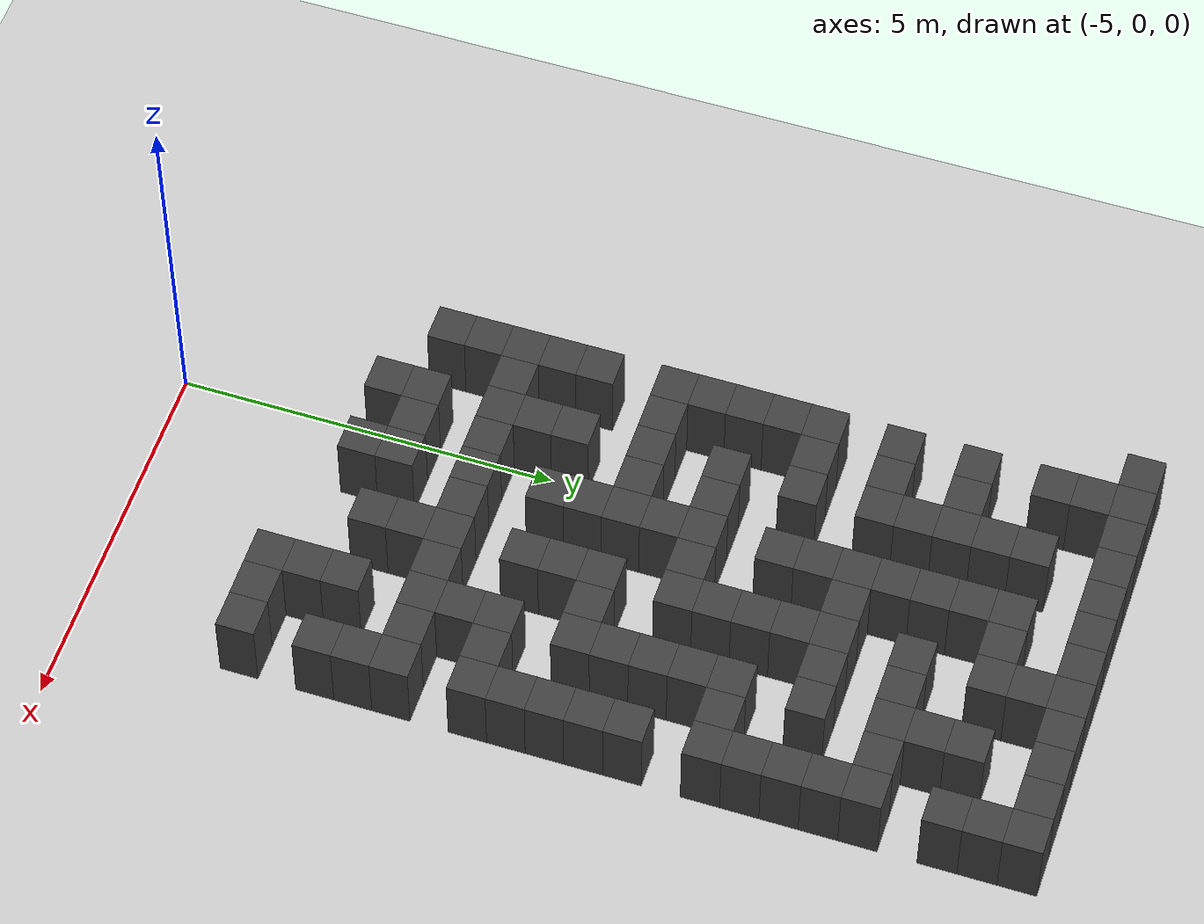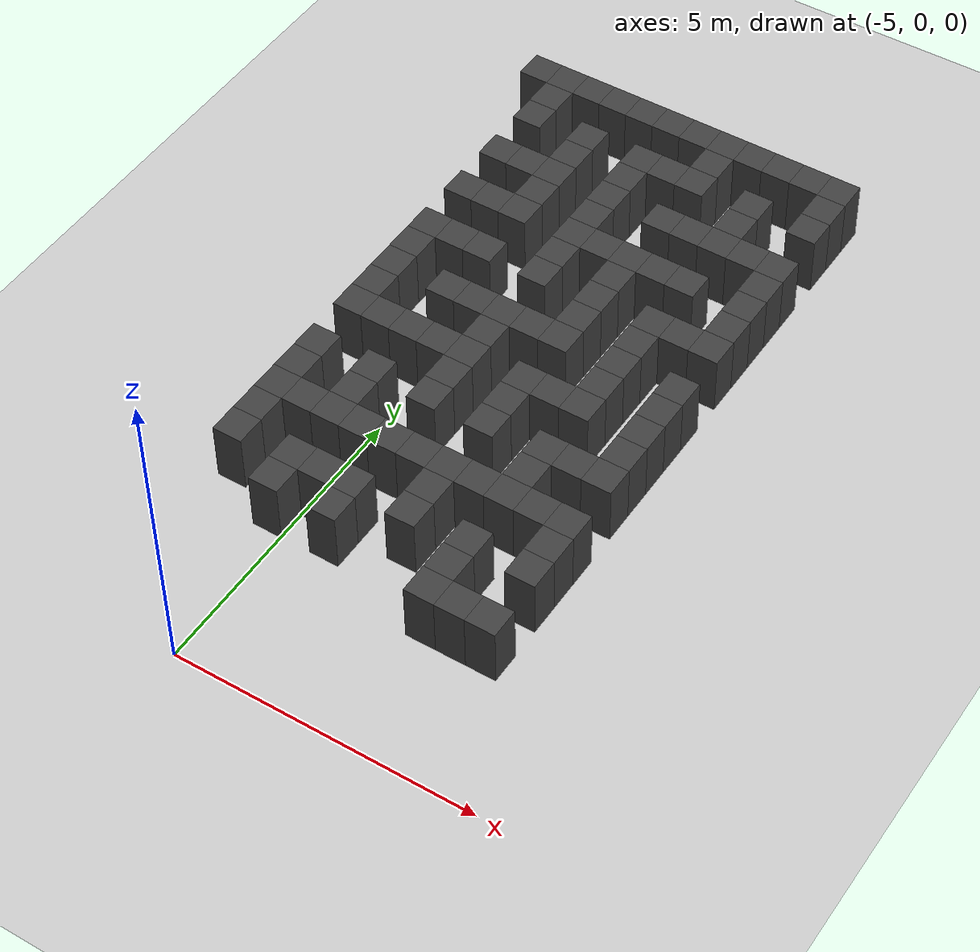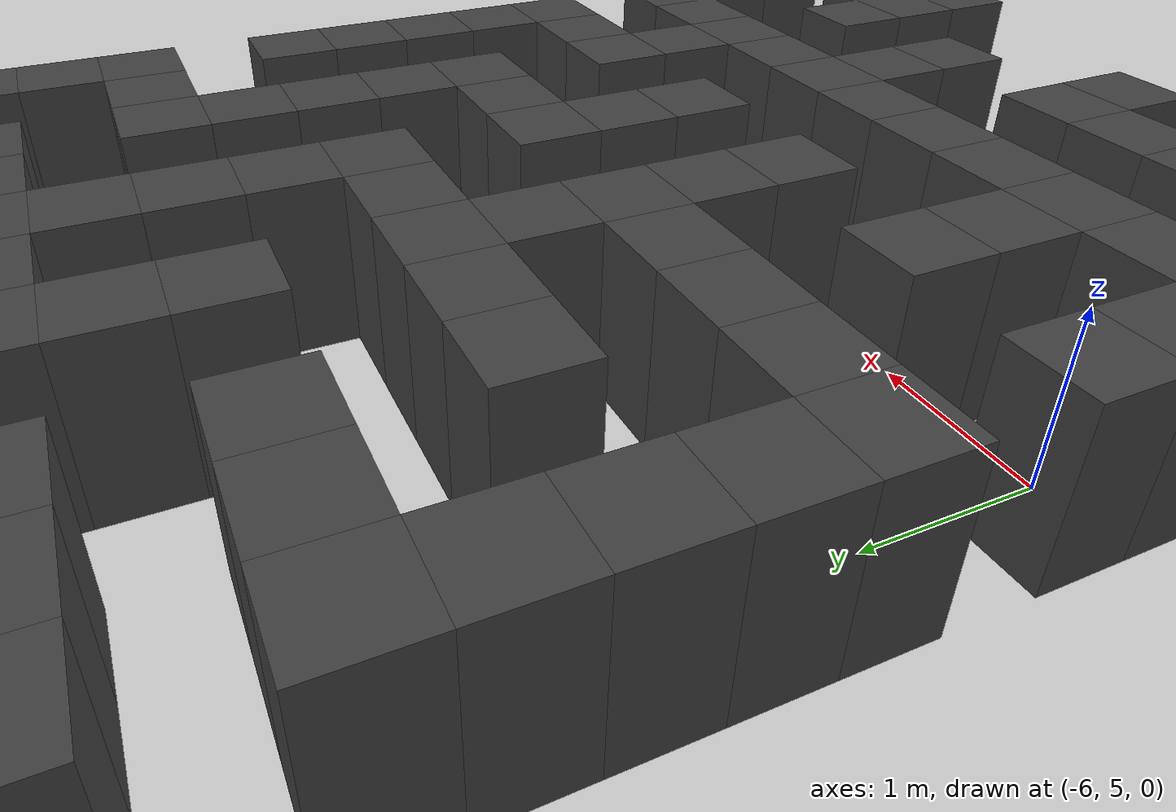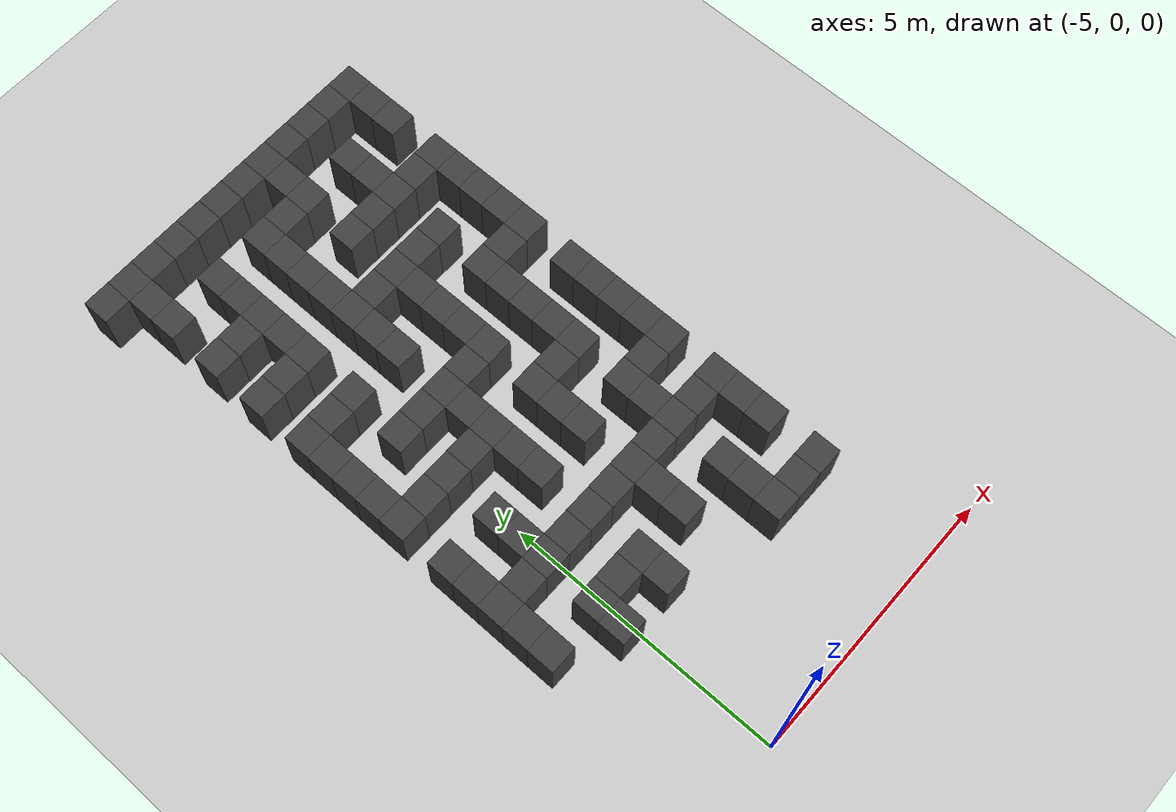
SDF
<sdf version="1.7">
 <world name="map_19815">
  <model name="ground_plane">
   <static>true</static>
   <link name="link">
    <collision name="collision">
     <geometry><plane><normal>0 0 1</normal><size>200 200</size></plane></geometry>
    </collision>
    <visual name="visual">
     <geometry><plane><normal>0 0 1</normal><size>200 200</size></plane></geometry>
     <material><ambient>0.8 0.8 0.8 1</ambient><diffuse>0.8 0.8 0.8 1</diffuse></material>
    </visual>
   </link>
  </model>
  <model name="maze_environment">
   <static>true</static>
   <link name="wall_11">
    <pose>-6.750 12.250 0.500 0 0 0</pose>
    <collision name="col"><geometry><box><size>0.5 0.5 1.0</size></box></geometry></collision>
    <visual name="vis">
     <geometry><box><size>0.5 0.5 1.0</size></box></geometry>
     <material><ambient>0.15 0.15 0.15 1</ambient><diffuse>0.25 0.25 0.25 1</diffuse></material>
    </visual>
   </link>
   <link name="wall_12">
    <pose>-6.250 12.250 0.500 0 0 0</pose>
    <collision name="col"><geometry><box><size>0.5 0.5 1.0</size></box></geometry></collision>
    <visual name="vis">
     <geometry><box><size>0.5 0.5 1.0</size></box></geometry>
     <material><ambient>0.15 0.15 0.15 1</ambient><diffuse>0.25 0.25 0.25 1</diffuse></material>
    </visual>
   </link>
   <link name="wall_13">
    <pose>-5.750 12.250 0.500 0 0 0</pose>
    <collision name="col"><geometry><box><size>0.5 0.5 1.0</size></box></geometry></collision>
    <visual name="vis">
     <geometry><box><size>0.5 0.5 1.0</size></box></geometry>
     <material><ambient>0.15 0.15 0.15 1</ambient><diffuse>0.25 0.25 0.25 1</diffuse></material>
    </visual>
   </link>
   <link name="wall_14">
    <pose>-5.250 12.250 0.500 0 0 0</pose>
    <collision name="col"><geometry><box><size>0.5 0.5 1.0</size></box></geometry></collision>
    <visual name="vis">
     <geometry><box><size>0.5 0.5 1.0</size></box></geometry>
     <material><ambient>0.15 0.15 0.15 1</ambient><diffuse>0.25 0.25 0.25 1</diffuse></material>
    </visual>
   </link>
   <link name="wall_15">
    <pose>-4.750 12.250 0.500 0 0 0</pose>
    <collision name="col"><geometry><box><size>0.5 0.5 1.0</size></box></geometry></collision>
    <visual name="vis">
     <geometry><box><size>0.5 0.5 1.0</size></box></geometry>
     <material><ambient>0.15 0.15 0.15 1</ambient><diffuse>0.25 0.25 0.25 1</diffuse></material>
    </visual>
   </link>
   <link name="wall_16">
    <pose>-4.250 12.250 0.500 0 0 0</pose>
    <collision name="col"><geometry><box><size>0.5 0.5 1.0</size></box></geometry></collision>
    <visual name="vis">
     <geometry><box><size>0.5 0.5 1.0</size></box></geometry>
     <material><ambient>0.15 0.15 0.15 1</ambient><diffuse>0.25 0.25 0.25 1</diffuse></material>
    </visual>
   </link>
   <link name="wall_17">
    <pose>-3.750 12.250 0.500 0 0 0</pose>
    <collision name="col"><geometry><box><size>0.5 0.5 1.0</size></box></geometry></collision>
    <visual name="vis">
     <geometry><box><size>0.5 0.5 1.0</size></box></geometry>
     <material><ambient>0.15 0.15 0.15 1</ambient><diffuse>0.25 0.25 0.25 1</diffuse></material>
    </visual>
   </link>
   <link name="wall_18">
    <pose>-3.250 12.250 0.500 0 0 0</pose>
    <collision name="col"><geometry><box><size>0.5 0.5 1.0</size></box></geometry></collision>
    <visual name="vis">
     <geometry><box><size>0.5 0.5 1.0</size></box></geometry>
     <material><ambient>0.15 0.15 0.15 1</ambient><diffuse>0.25 0.25 0.25 1</diffuse></material>
    </visual>
   </link>
   <link name="wall_19">
    <pose>-2.750 12.250 0.500 0 0 0</pose>
    <collision name="col"><geometry><box><size>0.5 0.5 1.0</size></box></geometry></collision>
    <visual name="vis">
     <geometry><box><size>0.5 0.5 1.0</size></box></geometry>
     <material><ambient>0.15 0.15 0.15 1</ambient><diffuse>0.25 0.25 0.25 1</diffuse></material>
    </visual>
   </link>
   <link name="wall_20">
    <pose>-2.250 12.250 0.500 0 0 0</pose>
    <collision name="col"><geometry><box><size>0.5 0.5 1.0</size></box></geometry></collision>
    <visual name="vis">
     <geometry><box><size>0.5 0.5 1.0</size></box></geometry>
     <material><ambient>0.15 0.15 0.15 1</ambient><diffuse>0.25 0.25 0.25 1</diffuse></material>
    </visual>
   </link>
   <link name="wall_21">
    <pose>-1.750 12.250 0.500 0 0 0</pose>
    <collision name="col"><geometry><box><size>0.5 0.5 1.0</size></box></geometry></collision>
    <visual name="vis">
     <geometry><box><size>0.5 0.5 1.0</size></box></geometry>
     <material><ambient>0.15 0.15 0.15 1</ambient><diffuse>0.25 0.25 0.25 1</diffuse></material>
    </visual>
   </link>
   <link name="wall_22">
    <pose>-1.250 12.250 0.500 0 0 0</pose>
    <collision name="col"><geometry><box><size>0.5 0.5 1.0</size></box></geometry></collision>
    <visual name="vis">
     <geometry><box><size>0.5 0.5 1.0</size></box></geometry>
     <material><ambient>0.15 0.15 0.15 1</ambient><diffuse>0.25 0.25 0.25 1</diffuse></material>
    </visual>
   </link>
   <link name="wall_53">
    <pose>-6.250 11.750 0.500 0 0 0</pose>
    <collision name="col"><geometry><box><size>0.5 0.5 1.0</size></box></geometry></collision>
    <visual name="vis">
     <geometry><box><size>0.5 0.5 1.0</size></box></geometry>
     <material><ambient>0.15 0.15 0.15 1</ambient><diffuse>0.25 0.25 0.25 1</diffuse></material>
    </visual>
   </link>
   <link name="wall_54">
    <pose>-3.250 11.750 0.500 0 0 0</pose>
    <collision name="col"><geometry><box><size>0.5 0.5 1.0</size></box></geometry></collision>
    <visual name="vis">
     <geometry><box><size>0.5 0.5 1.0</size></box></geometry>
     <material><ambient>0.15 0.15 0.15 1</ambient><diffuse>0.25 0.25 0.25 1</diffuse></material>
    </visual>
   </link>
   <link name="wall_55">
    <pose>-1.250 11.750 0.500 0 0 0</pose>
    <collision name="col"><geometry><box><size>0.5 0.5 1.0</size></box></geometry></collision>
    <visual name="vis">
     <geometry><box><size>0.5 0.5 1.0</size></box></geometry>
     <material><ambient>0.15 0.15 0.15 1</ambient><diffuse>0.25 0.25 0.25 1</diffuse></material>
    </visual>
   </link>
   <link name="wall_67">
    <pose>-6.250 11.250 0.500 0 0 0</pose>
    <collision name="col"><geometry><box><size>0.5 0.5 1.0</size></box></geometry></collision>
    <visual name="vis">
     <geometry><box><size>0.5 0.5 1.0</size></box></geometry>
     <material><ambient>0.15 0.15 0.15 1</ambient><diffuse>0.25 0.25 0.25 1</diffuse></material>
    </visual>
   </link>
   <link name="wall_68">
    <pose>-5.250 11.250 0.500 0 0 0</pose>
    <collision name="col"><geometry><box><size>0.5 0.5 1.0</size></box></geometry></collision>
    <visual name="vis">
     <geometry><box><size>0.5 0.5 1.0</size></box></geometry>
     <material><ambient>0.15 0.15 0.15 1</ambient><diffuse>0.25 0.25 0.25 1</diffuse></material>
    </visual>
   </link>
   <link name="wall_69">
    <pose>-4.250 11.250 0.500 0 0 0</pose>
    <collision name="col"><geometry><box><size>0.5 0.5 1.0</size></box></geometry></collision>
    <visual name="vis">
     <geometry><box><size>0.5 0.5 1.0</size></box></geometry>
     <material><ambient>0.15 0.15 0.15 1</ambient><diffuse>0.25 0.25 0.25 1</diffuse></material>
    </visual>
   </link>
   <link name="wall_70">
    <pose>-3.750 11.250 0.500 0 0 0</pose>
    <collision name="col"><geometry><box><size>0.5 0.5 1.0</size></box></geometry></collision>
    <visual name="vis">
     <geometry><box><size>0.5 0.5 1.0</size></box></geometry>
     <material><ambient>0.15 0.15 0.15 1</ambient><diffuse>0.25 0.25 0.25 1</diffuse></material>
    </visual>
   </link>
   <link name="wall_71">
    <pose>-3.250 11.250 0.500 0 0 0</pose>
    <collision name="col"><geometry><box><size>0.5 0.5 1.0</size></box></geometry></collision>
    <visual name="vis">
     <geometry><box><size>0.5 0.5 1.0</size></box></geometry>
     <material><ambient>0.15 0.15 0.15 1</ambient><diffuse>0.25 0.25 0.25 1</diffuse></material>
    </visual>
   </link>
   <link name="wall_72">
    <pose>-2.250 11.250 0.500 0 0 0</pose>
    <collision name="col"><geometry><box><size>0.5 0.5 1.0</size></box></geometry></collision>
    <visual name="vis">
     <geometry><box><size>0.5 0.5 1.0</size></box></geometry>
     <material><ambient>0.15 0.15 0.15 1</ambient><diffuse>0.25 0.25 0.25 1</diffuse></material>
    </visual>
   </link>
   <link name="wall_73">
    <pose>-1.250 11.250 0.500 0 0 0</pose>
    <collision name="col"><geometry><box><size>0.5 0.5 1.0</size></box></geometry></collision>
    <visual name="vis">
     <geometry><box><size>0.5 0.5 1.0</size></box></geometry>
     <material><ambient>0.15 0.15 0.15 1</ambient><diffuse>0.25 0.25 0.25 1</diffuse></material>
    </visual>
   </link>
   <link name="wall_99">
    <pose>-5.250 10.750 0.500 0 0 0</pose>
    <collision name="col"><geometry><box><size>0.5 0.5 1.0</size></box></geometry></collision>
    <visual name="vis">
     <geometry><box><size>0.5 0.5 1.0</size></box></geometry>
     <material><ambient>0.15 0.15 0.15 1</ambient><diffuse>0.25 0.25 0.25 1</diffuse></material>
    </visual>
   </link>
   <link name="wall_100">
    <pose>-4.250 10.750 0.500 0 0 0</pose>
    <collision name="col"><geometry><box><size>0.5 0.5 1.0</size></box></geometry></collision>
    <visual name="vis">
     <geometry><box><size>0.5 0.5 1.0</size></box></geometry>
     <material><ambient>0.15 0.15 0.15 1</ambient><diffuse>0.25 0.25 0.25 1</diffuse></material>
    </visual>
   </link>
   <link name="wall_101">
    <pose>-2.250 10.750 0.500 0 0 0</pose>
    <collision name="col"><geometry><box><size>0.5 0.5 1.0</size></box></geometry></collision>
    <visual name="vis">
     <geometry><box><size>0.5 0.5 1.0</size></box></geometry>
     <material><ambient>0.15 0.15 0.15 1</ambient><diffuse>0.25 0.25 0.25 1</diffuse></material>
    </visual>
   </link>
   <link name="wall_117">
    <pose>-6.250 10.250 0.500 0 0 0</pose>
    <collision name="col"><geometry><box><size>0.5 0.5 1.0</size></box></geometry></collision>
    <visual name="vis">
     <geometry><box><size>0.5 0.5 1.0</size></box></geometry>
     <material><ambient>0.15 0.15 0.15 1</ambient><diffuse>0.25 0.25 0.25 1</diffuse></material>
    </visual>
   </link>
   <link name="wall_118">
    <pose>-5.750 10.250 0.500 0 0 0</pose>
    <collision name="col"><geometry><box><size>0.5 0.5 1.0</size></box></geometry></collision>
    <visual name="vis">
     <geometry><box><size>0.5 0.5 1.0</size></box></geometry>
     <material><ambient>0.15 0.15 0.15 1</ambient><diffuse>0.25 0.25 0.25 1</diffuse></material>
    </visual>
   </link>
   <link name="wall_119">
    <pose>-5.250 10.250 0.500 0 0 0</pose>
    <collision name="col"><geometry><box><size>0.5 0.5 1.0</size></box></geometry></collision>
    <visual name="vis">
     <geometry><box><size>0.5 0.5 1.0</size></box></geometry>
     <material><ambient>0.15 0.15 0.15 1</ambient><diffuse>0.25 0.25 0.25 1</diffuse></material>
    </visual>
   </link>
   <link name="wall_120">
    <pose>-4.250 10.250 0.500 0 0 0</pose>
    <collision name="col"><geometry><box><size>0.5 0.5 1.0</size></box></geometry></collision>
    <visual name="vis">
     <geometry><box><size>0.5 0.5 1.0</size></box></geometry>
     <material><ambient>0.15 0.15 0.15 1</ambient><diffuse>0.25 0.25 0.25 1</diffuse></material>
    </visual>
   </link>
   <link name="wall_121">
    <pose>-3.250 10.250 0.500 0 0 0</pose>
    <collision name="col"><geometry><box><size>0.5 0.5 1.0</size></box></geometry></collision>
    <visual name="vis">
     <geometry><box><size>0.5 0.5 1.0</size></box></geometry>
     <material><ambient>0.15 0.15 0.15 1</ambient><diffuse>0.25 0.25 0.25 1</diffuse></material>
    </visual>
   </link>
   <link name="wall_122">
    <pose>-2.750 10.250 0.500 0 0 0</pose>
    <collision name="col"><geometry><box><size>0.5 0.5 1.0</size></box></geometry></collision>
    <visual name="vis">
     <geometry><box><size>0.5 0.5 1.0</size></box></geometry>
     <material><ambient>0.15 0.15 0.15 1</ambient><diffuse>0.25 0.25 0.25 1</diffuse></material>
    </visual>
   </link>
   <link name="wall_123">
    <pose>-2.250 10.250 0.500 0 0 0</pose>
    <collision name="col"><geometry><box><size>0.5 0.5 1.0</size></box></geometry></collision>
    <visual name="vis">
     <geometry><box><size>0.5 0.5 1.0</size></box></geometry>
     <material><ambient>0.15 0.15 0.15 1</ambient><diffuse>0.25 0.25 0.25 1</diffuse></material>
    </visual>
   </link>
   <link name="wall_124">
    <pose>-1.750 10.250 0.500 0 0 0</pose>
    <collision name="col"><geometry><box><size>0.5 0.5 1.0</size></box></geometry></collision>
    <visual name="vis">
     <geometry><box><size>0.5 0.5 1.0</size></box></geometry>
     <material><ambient>0.15 0.15 0.15 1</ambient><diffuse>0.25 0.25 0.25 1</diffuse></material>
    </visual>
   </link>
   <link name="wall_125">
    <pose>-1.250 10.250 0.500 0 0 0</pose>
    <collision name="col"><geometry><box><size>0.5 0.5 1.0</size></box></geometry></collision>
    <visual name="vis">
     <geometry><box><size>0.5 0.5 1.0</size></box></geometry>
     <material><ambient>0.15 0.15 0.15 1</ambient><diffuse>0.25 0.25 0.25 1</diffuse></material>
    </visual>
   </link>
   <link name="wall_150">
    <pose>-5.250 9.750 0.500 0 0 0</pose>
    <collision name="col"><geometry><box><size>0.5 0.5 1.0</size></box></geometry></collision>
    <visual name="vis">
     <geometry><box><size>0.5 0.5 1.0</size></box></geometry>
     <material><ambient>0.15 0.15 0.15 1</ambient><diffuse>0.25 0.25 0.25 1</diffuse></material>
    </visual>
   </link>
   <link name="wall_151">
    <pose>-4.250 9.750 0.500 0 0 0</pose>
    <collision name="col"><geometry><box><size>0.5 0.5 1.0</size></box></geometry></collision>
    <visual name="vis">
     <geometry><box><size>0.5 0.5 1.0</size></box></geometry>
     <material><ambient>0.15 0.15 0.15 1</ambient><diffuse>0.25 0.25 0.25 1</diffuse></material>
    </visual>
   </link>
   <link name="wall_152">
    <pose>-1.250 9.750 0.500 0 0 0</pose>
    <collision name="col"><geometry><box><size>0.5 0.5 1.0</size></box></geometry></collision>
    <visual name="vis">
     <geometry><box><size>0.5 0.5 1.0</size></box></geometry>
     <material><ambient>0.15 0.15 0.15 1</ambient><diffuse>0.25 0.25 0.25 1</diffuse></material>
    </visual>
   </link>
   <link name="wall_171">
    <pose>-6.250 9.250 0.500 0 0 0</pose>
    <collision name="col"><geometry><box><size>0.5 0.5 1.0</size></box></geometry></collision>
    <visual name="vis">
     <geometry><box><size>0.5 0.5 1.0</size></box></geometry>
     <material><ambient>0.15 0.15 0.15 1</ambient><diffuse>0.25 0.25 0.25 1</diffuse></material>
    </visual>
   </link>
   <link name="wall_172">
    <pose>-5.750 9.250 0.500 0 0 0</pose>
    <collision name="col"><geometry><box><size>0.5 0.5 1.0</size></box></geometry></collision>
    <visual name="vis">
     <geometry><box><size>0.5 0.5 1.0</size></box></geometry>
     <material><ambient>0.15 0.15 0.15 1</ambient><diffuse>0.25 0.25 0.25 1</diffuse></material>
    </visual>
   </link>
   <link name="wall_173">
    <pose>-5.250 9.250 0.500 0 0 0</pose>
    <collision name="col"><geometry><box><size>0.5 0.5 1.0</size></box></geometry></collision>
    <visual name="vis">
     <geometry><box><size>0.5 0.5 1.0</size></box></geometry>
     <material><ambient>0.15 0.15 0.15 1</ambient><diffuse>0.25 0.25 0.25 1</diffuse></material>
    </visual>
   </link>
   <link name="wall_174">
    <pose>-4.250 9.250 0.500 0 0 0</pose>
    <collision name="col"><geometry><box><size>0.5 0.5 1.0</size></box></geometry></collision>
    <visual name="vis">
     <geometry><box><size>0.5 0.5 1.0</size></box></geometry>
     <material><ambient>0.15 0.15 0.15 1</ambient><diffuse>0.25 0.25 0.25 1</diffuse></material>
    </visual>
   </link>
   <link name="wall_175">
    <pose>-3.750 9.250 0.500 0 0 0</pose>
    <collision name="col"><geometry><box><size>0.5 0.5 1.0</size></box></geometry></collision>
    <visual name="vis">
     <geometry><box><size>0.5 0.5 1.0</size></box></geometry>
     <material><ambient>0.15 0.15 0.15 1</ambient><diffuse>0.25 0.25 0.25 1</diffuse></material>
    </visual>
   </link>
   <link name="wall_176">
    <pose>-3.250 9.250 0.500 0 0 0</pose>
    <collision name="col"><geometry><box><size>0.5 0.5 1.0</size></box></geometry></collision>
    <visual name="vis">
     <geometry><box><size>0.5 0.5 1.0</size></box></geometry>
     <material><ambient>0.15 0.15 0.15 1</ambient><diffuse>0.25 0.25 0.25 1</diffuse></material>
    </visual>
   </link>
   <link name="wall_177">
    <pose>-2.750 9.250 0.500 0 0 0</pose>
    <collision name="col"><geometry><box><size>0.5 0.5 1.0</size></box></geometry></collision>
    <visual name="vis">
     <geometry><box><size>0.5 0.5 1.0</size></box></geometry>
     <material><ambient>0.15 0.15 0.15 1</ambient><diffuse>0.25 0.25 0.25 1</diffuse></material>
    </visual>
   </link>
   <link name="wall_178">
    <pose>-2.250 9.250 0.500 0 0 0</pose>
    <collision name="col"><geometry><box><size>0.5 0.5 1.0</size></box></geometry></collision>
    <visual name="vis">
     <geometry><box><size>0.5 0.5 1.0</size></box></geometry>
     <material><ambient>0.15 0.15 0.15 1</ambient><diffuse>0.25 0.25 0.25 1</diffuse></material>
    </visual>
   </link>
   <link name="wall_179">
    <pose>-1.250 9.250 0.500 0 0 0</pose>
    <collision name="col"><geometry><box><size>0.5 0.5 1.0</size></box></geometry></collision>
    <visual name="vis">
     <geometry><box><size>0.5 0.5 1.0</size></box></geometry>
     <material><ambient>0.15 0.15 0.15 1</ambient><diffuse>0.25 0.25 0.25 1</diffuse></material>
    </visual>
   </link>
   <link name="wall_204">
    <pose>-4.250 8.750 0.500 0 0 0</pose>
    <collision name="col"><geometry><box><size>0.5 0.5 1.0</size></box></geometry></collision>
    <visual name="vis">
     <geometry><box><size>0.5 0.5 1.0</size></box></geometry>
     <material><ambient>0.15 0.15 0.15 1</ambient><diffuse>0.25 0.25 0.25 1</diffuse></material>
    </visual>
   </link>
   <link name="wall_205">
    <pose>-3.250 8.750 0.500 0 0 0</pose>
    <collision name="col"><geometry><box><size>0.5 0.5 1.0</size></box></geometry></collision>
    <visual name="vis">
     <geometry><box><size>0.5 0.5 1.0</size></box></geometry>
     <material><ambient>0.15 0.15 0.15 1</ambient><diffuse>0.25 0.25 0.25 1</diffuse></material>
    </visual>
   </link>
   <link name="wall_206">
    <pose>-1.250 8.750 0.500 0 0 0</pose>
    <collision name="col"><geometry><box><size>0.5 0.5 1.0</size></box></geometry></collision>
    <visual name="vis">
     <geometry><box><size>0.5 0.5 1.0</size></box></geometry>
     <material><ambient>0.15 0.15 0.15 1</ambient><diffuse>0.25 0.25 0.25 1</diffuse></material>
    </visual>
   </link>
   <link name="wall_225">
    <pose>-6.250 8.250 0.500 0 0 0</pose>
    <collision name="col"><geometry><box><size>0.5 0.5 1.0</size></box></geometry></collision>
    <visual name="vis">
     <geometry><box><size>0.5 0.5 1.0</size></box></geometry>
     <material><ambient>0.15 0.15 0.15 1</ambient><diffuse>0.25 0.25 0.25 1</diffuse></material>
    </visual>
   </link>
   <link name="wall_226">
    <pose>-5.750 8.250 0.500 0 0 0</pose>
    <collision name="col"><geometry><box><size>0.5 0.5 1.0</size></box></geometry></collision>
    <visual name="vis">
     <geometry><box><size>0.5 0.5 1.0</size></box></geometry>
     <material><ambient>0.15 0.15 0.15 1</ambient><diffuse>0.25 0.25 0.25 1</diffuse></material>
    </visual>
   </link>
   <link name="wall_227">
    <pose>-5.250 8.250 0.500 0 0 0</pose>
    <collision name="col"><geometry><box><size>0.5 0.5 1.0</size></box></geometry></collision>
    <visual name="vis">
     <geometry><box><size>0.5 0.5 1.0</size></box></geometry>
     <material><ambient>0.15 0.15 0.15 1</ambient><diffuse>0.25 0.25 0.25 1</diffuse></material>
    </visual>
   </link>
   <link name="wall_228">
    <pose>-4.250 8.250 0.500 0 0 0</pose>
    <collision name="col"><geometry><box><size>0.5 0.5 1.0</size></box></geometry></collision>
    <visual name="vis">
     <geometry><box><size>0.5 0.5 1.0</size></box></geometry>
     <material><ambient>0.15 0.15 0.15 1</ambient><diffuse>0.25 0.25 0.25 1</diffuse></material>
    </visual>
   </link>
   <link name="wall_229">
    <pose>-3.250 8.250 0.500 0 0 0</pose>
    <collision name="col"><geometry><box><size>0.5 0.5 1.0</size></box></geometry></collision>
    <visual name="vis">
     <geometry><box><size>0.5 0.5 1.0</size></box></geometry>
     <material><ambient>0.15 0.15 0.15 1</ambient><diffuse>0.25 0.25 0.25 1</diffuse></material>
    </visual>
   </link>
   <link name="wall_230">
    <pose>-2.250 8.250 0.500 0 0 0</pose>
    <collision name="col"><geometry><box><size>0.5 0.5 1.0</size></box></geometry></collision>
    <visual name="vis">
     <geometry><box><size>0.5 0.5 1.0</size></box></geometry>
     <material><ambient>0.15 0.15 0.15 1</ambient><diffuse>0.25 0.25 0.25 1</diffuse></material>
    </visual>
   </link>
   <link name="wall_231">
    <pose>-1.750 8.250 0.500 0 0 0</pose>
    <collision name="col"><geometry><box><size>0.5 0.5 1.0</size></box></geometry></collision>
    <visual name="vis">
     <geometry><box><size>0.5 0.5 1.0</size></box></geometry>
     <material><ambient>0.15 0.15 0.15 1</ambient><diffuse>0.25 0.25 0.25 1</diffuse></material>
    </visual>
   </link>
   <link name="wall_232">
    <pose>-1.250 8.250 0.500 0 0 0</pose>
    <collision name="col"><geometry><box><size>0.5 0.5 1.0</size></box></geometry></collision>
    <visual name="vis">
     <geometry><box><size>0.5 0.5 1.0</size></box></geometry>
     <material><ambient>0.15 0.15 0.15 1</ambient><diffuse>0.25 0.25 0.25 1</diffuse></material>
    </visual>
   </link>
   <link name="wall_256">
    <pose>-6.250 7.750 0.500 0 0 0</pose>
    <collision name="col"><geometry><box><size>0.5 0.5 1.0</size></box></geometry></collision>
    <visual name="vis">
     <geometry><box><size>0.5 0.5 1.0</size></box></geometry>
     <material><ambient>0.15 0.15 0.15 1</ambient><diffuse>0.25 0.25 0.25 1</diffuse></material>
    </visual>
   </link>
   <link name="wall_257">
    <pose>-3.250 7.750 0.500 0 0 0</pose>
    <collision name="col"><geometry><box><size>0.5 0.5 1.0</size></box></geometry></collision>
    <visual name="vis">
     <geometry><box><size>0.5 0.5 1.0</size></box></geometry>
     <material><ambient>0.15 0.15 0.15 1</ambient><diffuse>0.25 0.25 0.25 1</diffuse></material>
    </visual>
   </link>
   <link name="wall_258">
    <pose>-2.250 7.750 0.500 0 0 0</pose>
    <collision name="col"><geometry><box><size>0.5 0.5 1.0</size></box></geometry></collision>
    <visual name="vis">
     <geometry><box><size>0.5 0.5 1.0</size></box></geometry>
     <material><ambient>0.15 0.15 0.15 1</ambient><diffuse>0.25 0.25 0.25 1</diffuse></material>
    </visual>
   </link>
   <link name="wall_273">
    <pose>-6.250 7.250 0.500 0 0 0</pose>
    <collision name="col"><geometry><box><size>0.5 0.5 1.0</size></box></geometry></collision>
    <visual name="vis">
     <geometry><box><size>0.5 0.5 1.0</size></box></geometry>
     <material><ambient>0.15 0.15 0.15 1</ambient><diffuse>0.25 0.25 0.25 1</diffuse></material>
    </visual>
   </link>
   <link name="wall_274">
    <pose>-5.250 7.250 0.500 0 0 0</pose>
    <collision name="col"><geometry><box><size>0.5 0.5 1.0</size></box></geometry></collision>
    <visual name="vis">
     <geometry><box><size>0.5 0.5 1.0</size></box></geometry>
     <material><ambient>0.15 0.15 0.15 1</ambient><diffuse>0.25 0.25 0.25 1</diffuse></material>
    </visual>
   </link>
   <link name="wall_275">
    <pose>-4.750 7.250 0.500 0 0 0</pose>
    <collision name="col"><geometry><box><size>0.5 0.5 1.0</size></box></geometry></collision>
    <visual name="vis">
     <geometry><box><size>0.5 0.5 1.0</size></box></geometry>
     <material><ambient>0.15 0.15 0.15 1</ambient><diffuse>0.25 0.25 0.25 1</diffuse></material>
    </visual>
   </link>
   <link name="wall_276">
    <pose>-4.250 7.250 0.500 0 0 0</pose>
    <collision name="col"><geometry><box><size>0.5 0.5 1.0</size></box></geometry></collision>
    <visual name="vis">
     <geometry><box><size>0.5 0.5 1.0</size></box></geometry>
     <material><ambient>0.15 0.15 0.15 1</ambient><diffuse>0.25 0.25 0.25 1</diffuse></material>
    </visual>
   </link>
   <link name="wall_277">
    <pose>-3.750 7.250 0.500 0 0 0</pose>
    <collision name="col"><geometry><box><size>0.5 0.5 1.0</size></box></geometry></collision>
    <visual name="vis">
     <geometry><box><size>0.5 0.5 1.0</size></box></geometry>
     <material><ambient>0.15 0.15 0.15 1</ambient><diffuse>0.25 0.25 0.25 1</diffuse></material>
    </visual>
   </link>
   <link name="wall_278">
    <pose>-3.250 7.250 0.500 0 0 0</pose>
    <collision name="col"><geometry><box><size>0.5 0.5 1.0</size></box></geometry></collision>
    <visual name="vis">
     <geometry><box><size>0.5 0.5 1.0</size></box></geometry>
     <material><ambient>0.15 0.15 0.15 1</ambient><diffuse>0.25 0.25 0.25 1</diffuse></material>
    </visual>
   </link>
   <link name="wall_279">
    <pose>-2.250 7.250 0.500 0 0 0</pose>
    <collision name="col"><geometry><box><size>0.5 0.5 1.0</size></box></geometry></collision>
    <visual name="vis">
     <geometry><box><size>0.5 0.5 1.0</size></box></geometry>
     <material><ambient>0.15 0.15 0.15 1</ambient><diffuse>0.25 0.25 0.25 1</diffuse></material>
    </visual>
   </link>
   <link name="wall_280">
    <pose>-1.250 7.250 0.500 0 0 0</pose>
    <collision name="col"><geometry><box><size>0.5 0.5 1.0</size></box></geometry></collision>
    <visual name="vis">
     <geometry><box><size>0.5 0.5 1.0</size></box></geometry>
     <material><ambient>0.15 0.15 0.15 1</ambient><diffuse>0.25 0.25 0.25 1</diffuse></material>
    </visual>
   </link>
   <link name="wall_305">
    <pose>-6.250 6.750 0.500 0 0 0</pose>
    <collision name="col"><geometry><box><size>0.5 0.5 1.0</size></box></geometry></collision>
    <visual name="vis">
     <geometry><box><size>0.5 0.5 1.0</size></box></geometry>
     <material><ambient>0.15 0.15 0.15 1</ambient><diffuse>0.25 0.25 0.25 1</diffuse></material>
    </visual>
   </link>
   <link name="wall_306">
    <pose>-4.250 6.750 0.500 0 0 0</pose>
    <collision name="col"><geometry><box><size>0.5 0.5 1.0</size></box></geometry></collision>
    <visual name="vis">
     <geometry><box><size>0.5 0.5 1.0</size></box></geometry>
     <material><ambient>0.15 0.15 0.15 1</ambient><diffuse>0.25 0.25 0.25 1</diffuse></material>
    </visual>
   </link>
   <link name="wall_307">
    <pose>-2.250 6.750 0.500 0 0 0</pose>
    <collision name="col"><geometry><box><size>0.5 0.5 1.0</size></box></geometry></collision>
    <visual name="vis">
     <geometry><box><size>0.5 0.5 1.0</size></box></geometry>
     <material><ambient>0.15 0.15 0.15 1</ambient><diffuse>0.25 0.25 0.25 1</diffuse></material>
    </visual>
   </link>
   <link name="wall_308">
    <pose>-1.250 6.750 0.500 0 0 0</pose>
    <collision name="col"><geometry><box><size>0.5 0.5 1.0</size></box></geometry></collision>
    <visual name="vis">
     <geometry><box><size>0.5 0.5 1.0</size></box></geometry>
     <material><ambient>0.15 0.15 0.15 1</ambient><diffuse>0.25 0.25 0.25 1</diffuse></material>
    </visual>
   </link>
   <link name="wall_327">
    <pose>-6.250 6.250 0.500 0 0 0</pose>
    <collision name="col"><geometry><box><size>0.5 0.5 1.0</size></box></geometry></collision>
    <visual name="vis">
     <geometry><box><size>0.5 0.5 1.0</size></box></geometry>
     <material><ambient>0.15 0.15 0.15 1</ambient><diffuse>0.25 0.25 0.25 1</diffuse></material>
    </visual>
   </link>
   <link name="wall_328">
    <pose>-5.750 6.250 0.500 0 0 0</pose>
    <collision name="col"><geometry><box><size>0.5 0.5 1.0</size></box></geometry></collision>
    <visual name="vis">
     <geometry><box><size>0.5 0.5 1.0</size></box></geometry>
     <material><ambient>0.15 0.15 0.15 1</ambient><diffuse>0.25 0.25 0.25 1</diffuse></material>
    </visual>
   </link>
   <link name="wall_329">
    <pose>-5.250 6.250 0.500 0 0 0</pose>
    <collision name="col"><geometry><box><size>0.5 0.5 1.0</size></box></geometry></collision>
    <visual name="vis">
     <geometry><box><size>0.5 0.5 1.0</size></box></geometry>
     <material><ambient>0.15 0.15 0.15 1</ambient><diffuse>0.25 0.25 0.25 1</diffuse></material>
    </visual>
   </link>
   <link name="wall_330">
    <pose>-4.750 6.250 0.500 0 0 0</pose>
    <collision name="col"><geometry><box><size>0.5 0.5 1.0</size></box></geometry></collision>
    <visual name="vis">
     <geometry><box><size>0.5 0.5 1.0</size></box></geometry>
     <material><ambient>0.15 0.15 0.15 1</ambient><diffuse>0.25 0.25 0.25 1</diffuse></material>
    </visual>
   </link>
   <link name="wall_331">
    <pose>-4.250 6.250 0.500 0 0 0</pose>
    <collision name="col"><geometry><box><size>0.5 0.5 1.0</size></box></geometry></collision>
    <visual name="vis">
     <geometry><box><size>0.5 0.5 1.0</size></box></geometry>
     <material><ambient>0.15 0.15 0.15 1</ambient><diffuse>0.25 0.25 0.25 1</diffuse></material>
    </visual>
   </link>
   <link name="wall_332">
    <pose>-3.250 6.250 0.500 0 0 0</pose>
    <collision name="col"><geometry><box><size>0.5 0.5 1.0</size></box></geometry></collision>
    <visual name="vis">
     <geometry><box><size>0.5 0.5 1.0</size></box></geometry>
     <material><ambient>0.15 0.15 0.15 1</ambient><diffuse>0.25 0.25 0.25 1</diffuse></material>
    </visual>
   </link>
   <link name="wall_333">
    <pose>-2.750 6.250 0.500 0 0 0</pose>
    <collision name="col"><geometry><box><size>0.5 0.5 1.0</size></box></geometry></collision>
    <visual name="vis">
     <geometry><box><size>0.5 0.5 1.0</size></box></geometry>
     <material><ambient>0.15 0.15 0.15 1</ambient><diffuse>0.25 0.25 0.25 1</diffuse></material>
    </visual>
   </link>
   <link name="wall_334">
    <pose>-2.250 6.250 0.500 0 0 0</pose>
    <collision name="col"><geometry><box><size>0.5 0.5 1.0</size></box></geometry></collision>
    <visual name="vis">
     <geometry><box><size>0.5 0.5 1.0</size></box></geometry>
     <material><ambient>0.15 0.15 0.15 1</ambient><diffuse>0.25 0.25 0.25 1</diffuse></material>
    </visual>
   </link>
   <link name="wall_335">
    <pose>-1.250 6.250 0.500 0 0 0</pose>
    <collision name="col"><geometry><box><size>0.5 0.5 1.0</size></box></geometry></collision>
    <visual name="vis">
     <geometry><box><size>0.5 0.5 1.0</size></box></geometry>
     <material><ambient>0.15 0.15 0.15 1</ambient><diffuse>0.25 0.25 0.25 1</diffuse></material>
    </visual>
   </link>
   <link name="wall_358">
    <pose>-4.250 5.750 0.500 0 0 0</pose>
    <collision name="col"><geometry><box><size>0.5 0.5 1.0</size></box></geometry></collision>
    <visual name="vis">
     <geometry><box><size>0.5 0.5 1.0</size></box></geometry>
     <material><ambient>0.15 0.15 0.15 1</ambient><diffuse>0.25 0.25 0.25 1</diffuse></material>
    </visual>
   </link>
   <link name="wall_359">
    <pose>-3.250 5.750 0.500 0 0 0</pose>
    <collision name="col"><geometry><box><size>0.5 0.5 1.0</size></box></geometry></collision>
    <visual name="vis">
     <geometry><box><size>0.5 0.5 1.0</size></box></geometry>
     <material><ambient>0.15 0.15 0.15 1</ambient><diffuse>0.25 0.25 0.25 1</diffuse></material>
    </visual>
   </link>
   <link name="wall_360">
    <pose>-1.250 5.750 0.500 0 0 0</pose>
    <collision name="col"><geometry><box><size>0.5 0.5 1.0</size></box></geometry></collision>
    <visual name="vis">
     <geometry><box><size>0.5 0.5 1.0</size></box></geometry>
     <material><ambient>0.15 0.15 0.15 1</ambient><diffuse>0.25 0.25 0.25 1</diffuse></material>
    </visual>
   </link>
   <link name="wall_380">
    <pose>-6.250 5.250 0.500 0 0 0</pose>
    <collision name="col"><geometry><box><size>0.5 0.5 1.0</size></box></geometry></collision>
    <visual name="vis">
     <geometry><box><size>0.5 0.5 1.0</size></box></geometry>
     <material><ambient>0.15 0.15 0.15 1</ambient><diffuse>0.25 0.25 0.25 1</diffuse></material>
    </visual>
   </link>
   <link name="wall_381">
    <pose>-5.250 5.250 0.500 0 0 0</pose>
    <collision name="col"><geometry><box><size>0.5 0.5 1.0</size></box></geometry></collision>
    <visual name="vis">
     <geometry><box><size>0.5 0.5 1.0</size></box></geometry>
     <material><ambient>0.15 0.15 0.15 1</ambient><diffuse>0.25 0.25 0.25 1</diffuse></material>
    </visual>
   </link>
   <link name="wall_382">
    <pose>-4.250 5.250 0.500 0 0 0</pose>
    <collision name="col"><geometry><box><size>0.5 0.5 1.0</size></box></geometry></collision>
    <visual name="vis">
     <geometry><box><size>0.5 0.5 1.0</size></box></geometry>
     <material><ambient>0.15 0.15 0.15 1</ambient><diffuse>0.25 0.25 0.25 1</diffuse></material>
    </visual>
   </link>
   <link name="wall_383">
    <pose>-3.250 5.250 0.500 0 0 0</pose>
    <collision name="col"><geometry><box><size>0.5 0.5 1.0</size></box></geometry></collision>
    <visual name="vis">
     <geometry><box><size>0.5 0.5 1.0</size></box></geometry>
     <material><ambient>0.15 0.15 0.15 1</ambient><diffuse>0.25 0.25 0.25 1</diffuse></material>
    </visual>
   </link>
   <link name="wall_384">
    <pose>-2.250 5.250 0.500 0 0 0</pose>
    <collision name="col"><geometry><box><size>0.5 0.5 1.0</size></box></geometry></collision>
    <visual name="vis">
     <geometry><box><size>0.5 0.5 1.0</size></box></geometry>
     <material><ambient>0.15 0.15 0.15 1</ambient><diffuse>0.25 0.25 0.25 1</diffuse></material>
    </visual>
   </link>
   <link name="wall_385">
    <pose>-1.750 5.250 0.500 0 0 0</pose>
    <collision name="col"><geometry><box><size>0.5 0.5 1.0</size></box></geometry></collision>
    <visual name="vis">
     <geometry><box><size>0.5 0.5 1.0</size></box></geometry>
     <material><ambient>0.15 0.15 0.15 1</ambient><diffuse>0.25 0.25 0.25 1</diffuse></material>
    </visual>
   </link>
   <link name="wall_386">
    <pose>-1.250 5.250 0.500 0 0 0</pose>
    <collision name="col"><geometry><box><size>0.5 0.5 1.0</size></box></geometry></collision>
    <visual name="vis">
     <geometry><box><size>0.5 0.5 1.0</size></box></geometry>
     <material><ambient>0.15 0.15 0.15 1</ambient><diffuse>0.25 0.25 0.25 1</diffuse></material>
    </visual>
   </link>
   <link name="wall_409">
    <pose>-6.250 4.750 0.500 0 0 0</pose>
    <collision name="col"><geometry><box><size>0.5 0.5 1.0</size></box></geometry></collision>
    <visual name="vis">
     <geometry><box><size>0.5 0.5 1.0</size></box></geometry>
     <material><ambient>0.15 0.15 0.15 1</ambient><diffuse>0.25 0.25 0.25 1</diffuse></material>
    </visual>
   </link>
   <link name="wall_410">
    <pose>-5.250 4.750 0.500 0 0 0</pose>
    <collision name="col"><geometry><box><size>0.5 0.5 1.0</size></box></geometry></collision>
    <visual name="vis">
     <geometry><box><size>0.5 0.5 1.0</size></box></geometry>
     <material><ambient>0.15 0.15 0.15 1</ambient><diffuse>0.25 0.25 0.25 1</diffuse></material>
    </visual>
   </link>
   <link name="wall_411">
    <pose>-2.250 4.750 0.500 0 0 0</pose>
    <collision name="col"><geometry><box><size>0.5 0.5 1.0</size></box></geometry></collision>
    <visual name="vis">
     <geometry><box><size>0.5 0.5 1.0</size></box></geometry>
     <material><ambient>0.15 0.15 0.15 1</ambient><diffuse>0.25 0.25 0.25 1</diffuse></material>
    </visual>
   </link>
   <link name="wall_428">
    <pose>-6.250 4.250 0.500 0 0 0</pose>
    <collision name="col"><geometry><box><size>0.5 0.5 1.0</size></box></geometry></collision>
    <visual name="vis">
     <geometry><box><size>0.5 0.5 1.0</size></box></geometry>
     <material><ambient>0.15 0.15 0.15 1</ambient><diffuse>0.25 0.25 0.25 1</diffuse></material>
    </visual>
   </link>
   <link name="wall_429">
    <pose>-5.750 4.250 0.500 0 0 0</pose>
    <collision name="col"><geometry><box><size>0.5 0.5 1.0</size></box></geometry></collision>
    <visual name="vis">
     <geometry><box><size>0.5 0.5 1.0</size></box></geometry>
     <material><ambient>0.15 0.15 0.15 1</ambient><diffuse>0.25 0.25 0.25 1</diffuse></material>
    </visual>
   </link>
   <link name="wall_430">
    <pose>-5.250 4.250 0.500 0 0 0</pose>
    <collision name="col"><geometry><box><size>0.5 0.5 1.0</size></box></geometry></collision>
    <visual name="vis">
     <geometry><box><size>0.5 0.5 1.0</size></box></geometry>
     <material><ambient>0.15 0.15 0.15 1</ambient><diffuse>0.25 0.25 0.25 1</diffuse></material>
    </visual>
   </link>
   <link name="wall_431">
    <pose>-4.750 4.250 0.500 0 0 0</pose>
    <collision name="col"><geometry><box><size>0.5 0.5 1.0</size></box></geometry></collision>
    <visual name="vis">
     <geometry><box><size>0.5 0.5 1.0</size></box></geometry>
     <material><ambient>0.15 0.15 0.15 1</ambient><diffuse>0.25 0.25 0.25 1</diffuse></material>
    </visual>
   </link>
   <link name="wall_432">
    <pose>-4.250 4.250 0.500 0 0 0</pose>
    <collision name="col"><geometry><box><size>0.5 0.5 1.0</size></box></geometry></collision>
    <visual name="vis">
     <geometry><box><size>0.5 0.5 1.0</size></box></geometry>
     <material><ambient>0.15 0.15 0.15 1</ambient><diffuse>0.25 0.25 0.25 1</diffuse></material>
    </visual>
   </link>
   <link name="wall_433">
    <pose>-3.750 4.250 0.500 0 0 0</pose>
    <collision name="col"><geometry><box><size>0.5 0.5 1.0</size></box></geometry></collision>
    <visual name="vis">
     <geometry><box><size>0.5 0.5 1.0</size></box></geometry>
     <material><ambient>0.15 0.15 0.15 1</ambient><diffuse>0.25 0.25 0.25 1</diffuse></material>
    </visual>
   </link>
   <link name="wall_434">
    <pose>-3.250 4.250 0.500 0 0 0</pose>
    <collision name="col"><geometry><box><size>0.5 0.5 1.0</size></box></geometry></collision>
    <visual name="vis">
     <geometry><box><size>0.5 0.5 1.0</size></box></geometry>
     <material><ambient>0.15 0.15 0.15 1</ambient><diffuse>0.25 0.25 0.25 1</diffuse></material>
    </visual>
   </link>
   <link name="wall_435">
    <pose>-2.750 4.250 0.500 0 0 0</pose>
    <collision name="col"><geometry><box><size>0.5 0.5 1.0</size></box></geometry></collision>
    <visual name="vis">
     <geometry><box><size>0.5 0.5 1.0</size></box></geometry>
     <material><ambient>0.15 0.15 0.15 1</ambient><diffuse>0.25 0.25 0.25 1</diffuse></material>
    </visual>
   </link>
   <link name="wall_436">
    <pose>-2.250 4.250 0.500 0 0 0</pose>
    <collision name="col"><geometry><box><size>0.5 0.5 1.0</size></box></geometry></collision>
    <visual name="vis">
     <geometry><box><size>0.5 0.5 1.0</size></box></geometry>
     <material><ambient>0.15 0.15 0.15 1</ambient><diffuse>0.25 0.25 0.25 1</diffuse></material>
    </visual>
   </link>
   <link name="wall_437">
    <pose>-1.750 4.250 0.500 0 0 0</pose>
    <collision name="col"><geometry><box><size>0.5 0.5 1.0</size></box></geometry></collision>
    <visual name="vis">
     <geometry><box><size>0.5 0.5 1.0</size></box></geometry>
     <material><ambient>0.15 0.15 0.15 1</ambient><diffuse>0.25 0.25 0.25 1</diffuse></material>
    </visual>
   </link>
   <link name="wall_438">
    <pose>-1.250 4.250 0.500 0 0 0</pose>
    <collision name="col"><geometry><box><size>0.5 0.5 1.0</size></box></geometry></collision>
    <visual name="vis">
     <geometry><box><size>0.5 0.5 1.0</size></box></geometry>
     <material><ambient>0.15 0.15 0.15 1</ambient><diffuse>0.25 0.25 0.25 1</diffuse></material>
    </visual>
   </link>
   <link name="wall_461">
    <pose>-6.250 3.750 0.500 0 0 0</pose>
    <collision name="col"><geometry><box><size>0.5 0.5 1.0</size></box></geometry></collision>
    <visual name="vis">
     <geometry><box><size>0.5 0.5 1.0</size></box></geometry>
     <material><ambient>0.15 0.15 0.15 1</ambient><diffuse>0.25 0.25 0.25 1</diffuse></material>
    </visual>
   </link>
   <link name="wall_462">
    <pose>-3.250 3.750 0.500 0 0 0</pose>
    <collision name="col"><geometry><box><size>0.5 0.5 1.0</size></box></geometry></collision>
    <visual name="vis">
     <geometry><box><size>0.5 0.5 1.0</size></box></geometry>
     <material><ambient>0.15 0.15 0.15 1</ambient><diffuse>0.25 0.25 0.25 1</diffuse></material>
    </visual>
   </link>
   <link name="wall_463">
    <pose>-1.250 3.750 0.500 0 0 0</pose>
    <collision name="col"><geometry><box><size>0.5 0.5 1.0</size></box></geometry></collision>
    <visual name="vis">
     <geometry><box><size>0.5 0.5 1.0</size></box></geometry>
     <material><ambient>0.15 0.15 0.15 1</ambient><diffuse>0.25 0.25 0.25 1</diffuse></material>
    </visual>
   </link>
   <link name="wall_479">
    <pose>-6.250 3.250 0.500 0 0 0</pose>
    <collision name="col"><geometry><box><size>0.5 0.5 1.0</size></box></geometry></collision>
    <visual name="vis">
     <geometry><box><size>0.5 0.5 1.0</size></box></geometry>
     <material><ambient>0.15 0.15 0.15 1</ambient><diffuse>0.25 0.25 0.25 1</diffuse></material>
    </visual>
   </link>
   <link name="wall_480">
    <pose>-5.250 3.250 0.500 0 0 0</pose>
    <collision name="col"><geometry><box><size>0.5 0.5 1.0</size></box></geometry></collision>
    <visual name="vis">
     <geometry><box><size>0.5 0.5 1.0</size></box></geometry>
     <material><ambient>0.15 0.15 0.15 1</ambient><diffuse>0.25 0.25 0.25 1</diffuse></material>
    </visual>
   </link>
   <link name="wall_481">
    <pose>-4.750 3.250 0.500 0 0 0</pose>
    <collision name="col"><geometry><box><size>0.5 0.5 1.0</size></box></geometry></collision>
    <visual name="vis">
     <geometry><box><size>0.5 0.5 1.0</size></box></geometry>
     <material><ambient>0.15 0.15 0.15 1</ambient><diffuse>0.25 0.25 0.25 1</diffuse></material>
    </visual>
   </link>
   <link name="wall_482">
    <pose>-4.250 3.250 0.500 0 0 0</pose>
    <collision name="col"><geometry><box><size>0.5 0.5 1.0</size></box></geometry></collision>
    <visual name="vis">
     <geometry><box><size>0.5 0.5 1.0</size></box></geometry>
     <material><ambient>0.15 0.15 0.15 1</ambient><diffuse>0.25 0.25 0.25 1</diffuse></material>
    </visual>
   </link>
   <link name="wall_483">
    <pose>-3.250 3.250 0.500 0 0 0</pose>
    <collision name="col"><geometry><box><size>0.5 0.5 1.0</size></box></geometry></collision>
    <visual name="vis">
     <geometry><box><size>0.5 0.5 1.0</size></box></geometry>
     <material><ambient>0.15 0.15 0.15 1</ambient><diffuse>0.25 0.25 0.25 1</diffuse></material>
    </visual>
   </link>
   <link name="wall_484">
    <pose>-2.250 3.250 0.500 0 0 0</pose>
    <collision name="col"><geometry><box><size>0.5 0.5 1.0</size></box></geometry></collision>
    <visual name="vis">
     <geometry><box><size>0.5 0.5 1.0</size></box></geometry>
     <material><ambient>0.15 0.15 0.15 1</ambient><diffuse>0.25 0.25 0.25 1</diffuse></material>
    </visual>
   </link>
   <link name="wall_485">
    <pose>-1.250 3.250 0.500 0 0 0</pose>
    <collision name="col"><geometry><box><size>0.5 0.5 1.0</size></box></geometry></collision>
    <visual name="vis">
     <geometry><box><size>0.5 0.5 1.0</size></box></geometry>
     <material><ambient>0.15 0.15 0.15 1</ambient><diffuse>0.25 0.25 0.25 1</diffuse></material>
    </visual>
   </link>
   <link name="wall_511">
    <pose>-5.250 2.750 0.500 0 0 0</pose>
    <collision name="col"><geometry><box><size>0.5 0.5 1.0</size></box></geometry></collision>
    <visual name="vis">
     <geometry><box><size>0.5 0.5 1.0</size></box></geometry>
     <material><ambient>0.15 0.15 0.15 1</ambient><diffuse>0.25 0.25 0.25 1</diffuse></material>
    </visual>
   </link>
   <link name="wall_512">
    <pose>-4.250 2.750 0.500 0 0 0</pose>
    <collision name="col"><geometry><box><size>0.5 0.5 1.0</size></box></geometry></collision>
    <visual name="vis">
     <geometry><box><size>0.5 0.5 1.0</size></box></geometry>
     <material><ambient>0.15 0.15 0.15 1</ambient><diffuse>0.25 0.25 0.25 1</diffuse></material>
    </visual>
   </link>
   <link name="wall_513">
    <pose>-2.250 2.750 0.500 0 0 0</pose>
    <collision name="col"><geometry><box><size>0.5 0.5 1.0</size></box></geometry></collision>
    <visual name="vis">
     <geometry><box><size>0.5 0.5 1.0</size></box></geometry>
     <material><ambient>0.15 0.15 0.15 1</ambient><diffuse>0.25 0.25 0.25 1</diffuse></material>
    </visual>
   </link>
   <link name="wall_540">
    <pose>-2.250 2.250 0.500 0 0 0</pose>
    <collision name="col"><geometry><box><size>0.5 0.5 1.0</size></box></geometry></collision>
    <visual name="vis">
     <geometry><box><size>0.5 0.5 1.0</size></box></geometry>
     <material><ambient>0.15 0.15 0.15 1</ambient><diffuse>0.25 0.25 0.25 1</diffuse></material>
    </visual>
   </link>
   <link name="wall_541">
    <pose>-1.750 2.250 0.500 0 0 0</pose>
    <collision name="col"><geometry><box><size>0.5 0.5 1.0</size></box></geometry></collision>
    <visual name="vis">
     <geometry><box><size>0.5 0.5 1.0</size></box></geometry>
     <material><ambient>0.15 0.15 0.15 1</ambient><diffuse>0.25 0.25 0.25 1</diffuse></material>
    </visual>
   </link>
   <link name="wall_542">
    <pose>-1.250 2.250 0.500 0 0 0</pose>
    <collision name="col"><geometry><box><size>0.5 0.5 1.0</size></box></geometry></collision>
    <visual name="vis">
     <geometry><box><size>0.5 0.5 1.0</size></box></geometry>
     <material><ambient>0.15 0.15 0.15 1</ambient><diffuse>0.25 0.25 0.25 1</diffuse></material>
    </visual>
   </link>
  </model>
 </world>
</sdf>
